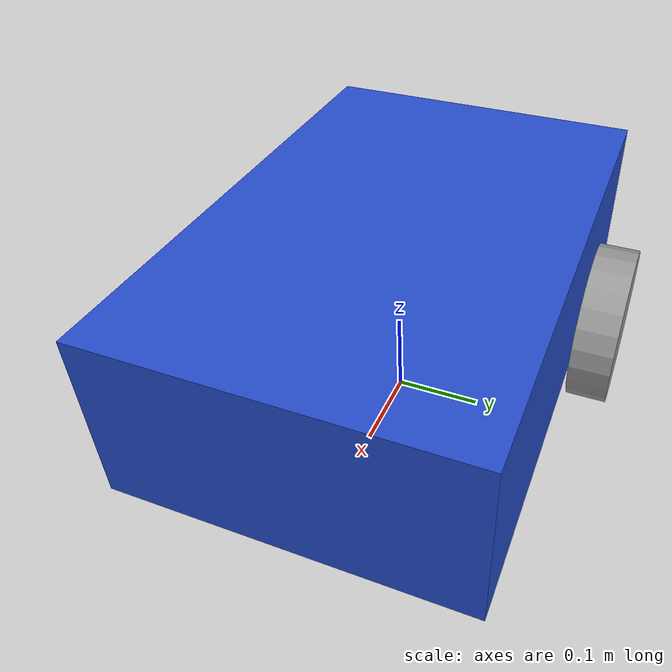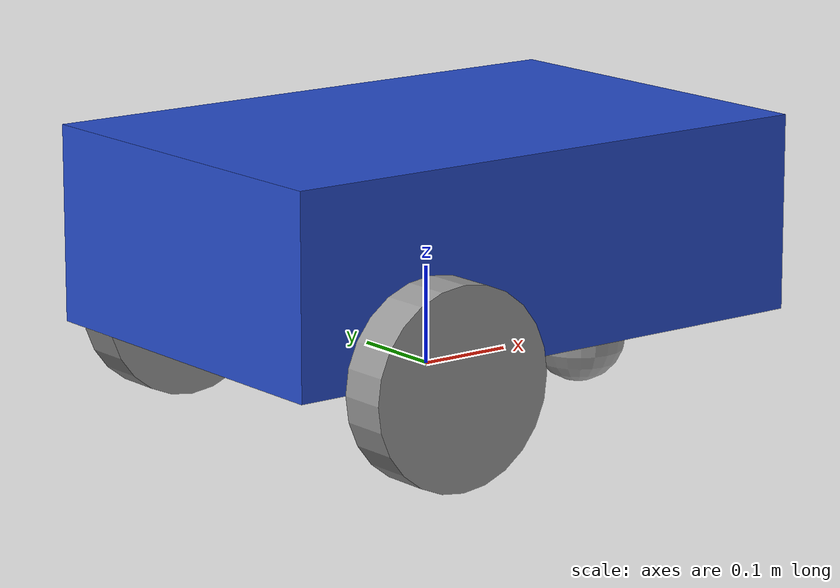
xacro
<?xml version="1.0"?>
<robot xmlns:xacro="http://www.ros.org/wiki/xacro">

    <xacro:property name="base_length" value="0.6" />
    <xacro:property name="base_width" value="0.4" />
    <xacro:property name="base_height" value="0.2" />
    <xacro:property name="wheel_radius" value="0.1" />
    <xacro:property name="wheel_length" value="0.05" />

    <link name="base_link">
        <visual>
            <geometry>
                <!-- shape, length, width, height (m) -->
                <box size="${base_length} ${base_width} ${base_height}"/>
            </geometry>
            <!-- offset of the object -->
            <origin xyz="0 0 ${base_height / 2.0}" rpy="0 0 0"/>
            <material name="blue"/>
        </visual>

        <collision>
            <geometry>
                <box size="${base_length} ${base_width} ${base_height}"/>
            </geometry>
            <origin xyz="0 0 ${base_height / 2.0}" rpy="0 0 0"/>
            <!-- quite the same as visual, no material though -->
        </collision>

        <xacro:box_inertia m="5.0" x="${base_length}" y="${base_width}" z="${base_height}"
                           o_xyz="0 0 ${base_height / 2.0}" o_rpy="0 0 0"/>
            <!-- The mass unit is kg -->
            <!-- The origin xyz here is the same as the visual origin xyz. -->
    </link>

    <xacro:macro name="wheel_link" params="prefix">
        <link name="${prefix}_wheel_link">
            <visual>
                <geometry>
                    <cylinder radius="${wheel_radius}" length="${wheel_length}" />
                </geometry>
                <origin xyz="0 0 0" rpy="${pi / 2.0} 0 0" />
                <material name="gray" />
            </visual>

            <collision>
                <geometry>
                    <sphere radius="${wheel_radius}" />
                </geometry>
                <origin xyz="0 0 0" rpy="0 0 0" />
                <!-- here we use sphere instead of cylinder for collision to simplify the calculation -->
                <!-- and the rpy doesn't matter any more in sphere -->
            </collision>

            <xacro:cylinder_inertia m="1.0" r="${wheel_radius}" l="${wheel_length}"
                                    o_xyz="0 0 0" o_rpy="${pi / 2.0} 0 0"/>
        </link>
    </xacro:macro>

    <xacro:wheel_link prefix="right" />
    <xacro:wheel_link prefix="left" />

    <link name="caster_wheel_link">
        <visual>
            <geometry>
                <sphere radius="${wheel_radius / 2.0}" />
            </geometry>
            <origin xyz="0 0 0" rpy="0 0 0" />
            <material name="gray" />
        </visual>

        <collision>
            <geometry>
                <sphere radius="${wheel_radius / 2.0}" />
            </geometry>
            <origin xyz="0 0 0" rpy="0 0 0" />
        </collision>

        <xacro:sphere_inertia m="0.5" r="${wheel_radius / 2.0}"
                              o_xyz="0 0 0" o_rpy="0 0 0"/>
    </link>

    <link name="base_footprint">

    </link>

    <joint name="base_right_wheel_joint" type="continuous">
        <parent link="base_link"/>
        <child link="right_wheel_link"/>
        <origin xyz="${-base_length / 4.0} ${-base_width / 2.0 - wheel_length / 2.0} 0" rpy="0 0 0"/>
        <axis xyz="0 1 0" />
    </joint>

    <joint name="base_left_wheel_joint" type="continuous">
        <parent link="base_link"/>
        <child link="left_wheel_link"/>
        <origin xyz="${-base_length / 4.0} ${base_width / 2.0 + wheel_length / 2.0} 0" rpy="0 0 0"/>
        <axis xyz="0 1 0" />
    </joint>

    <joint name="base_caster_wheel_joint" type="fixed">
        <parent link="base_link"/>
        <child link="caster_wheel_link"/>
        <origin xyz="${base_length / 3.0} 0 ${-wheel_radius / 2.0}" rpy="0 0 0"/>
    </joint>

    <joint name="base_joint" type="fixed">
        <parent link="base_footprint"/>
        <child link="base_link"/>
        <origin xyz="0 0 ${wheel_radius / 2.0}" rpy="0 0 0"/>
    </joint>
</robot>
